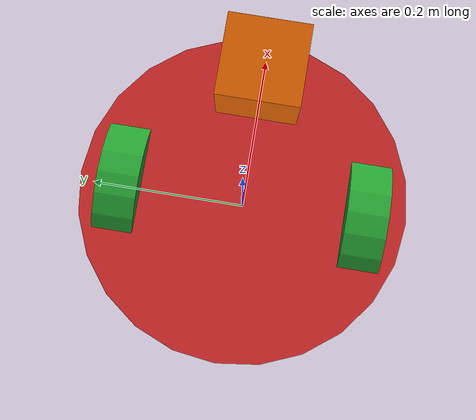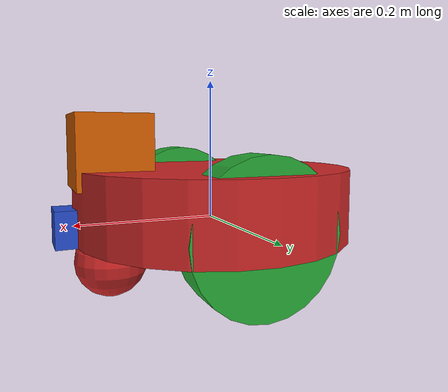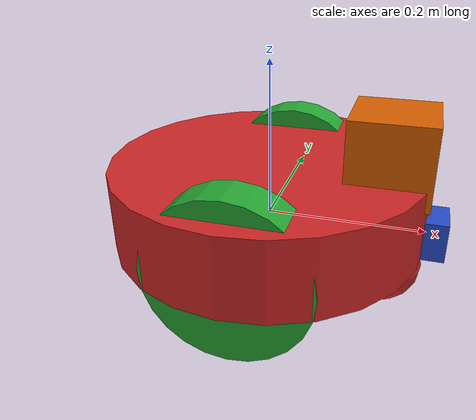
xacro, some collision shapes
<?xml version='1.0'?>
<robot name="my_robot" xmlns:xacro="http://www.ros.org/wiki/xacro">
  <xacro:include filename="$(find my_robot)/urdf/my_robot.gazebo" />

  <link name="robot_footprint"></link>
  <joint name="robot_footprint_joint" type="fixed">
    <origin xyz="0 0 0" rpy=" 0 0 0"/>
    <parent link="robot_footprint"/>
    <child link="chassis" />
  </joint>

  <link name='chassis'>
    <pose>0 0 0.1 0 0 0</pose>
    <inertial>
      <mass value="15.0"/>
      <origin xyz="0.0 0 0" rpy=" 0 0 0"/>
      <inertia
          ixx="0.1" ixy="0" ixz="0"
          iyy="0.1" iyz="0"
          izz="0.1"
      />
    </inertial>

    <collision name='collision'>
      <origin xyz="0 0 0.025" rpy=" 0 0 0"/>
      <geometry>
        <cylinder length="0.1" radius="0.2"/>
      </geometry>
    </collision>

    <visual name='chassis_visual'>
      <origin xyz="0 0 0.025" rpy=" 0 0 0"/>
      <geometry>
        <cylinder length="0.1" radius="0.2"/>
      </geometry>
    </visual>

    <collision name='back_caster_collision'>
      <origin xyz="-0.15 0 -0.05" rpy=" 0 0 0"/>
      <geometry>
        <sphere radius="0.0499"/>
      </geometry>
    </collision>

    <visual name='back_caster_visual'>
      <origin xyz="-0.15 0 -0.05" rpy=" 0 0 0"/>
      <geometry>
        <sphere radius="0.05"/>
      </geometry>
    </visual>

    <collision name='front_caster_collision'>
      <origin xyz="0.15 0 -0.05" rpy=" 0 0 0"/>
      <geometry>
        <sphere radius="0.0499"/>
      </geometry>
    </collision>

    <visual name='front_caster_visual'>
      <origin xyz="0.15 0 -0.05" rpy=" 0 0 0"/>
      <geometry>
        <sphere radius="0.05"/>
      </geometry>
    </visual>

  </link>

   <gazebo reference="chassis">
    <material>Gazebo/Red</material>
  </gazebo>

  <link name="left_wheel">
    <inertial>
      <mass value="5"/>
      <origin rpy="0 1.5707 1.5707" xyz="0 0 0"/>
      <inertia ixx="0.1" ixy="0" ixz="0" iyy="0.1" iyz="0" izz="0.1"/>
    </inertial>

    <collision name="left_wheel_collision">
      <origin rpy="0 1.5707 1.5707" xyz="0 0 0" />
      <geometry>
        <cylinder length="0.05" radius="0.1"/>
      </geometry>
    </collision>

    <visual name="left_wheel_visual">
      <origin rpy="0 1.5707 1.5707" xyz="0 0 0"/>
      <geometry>
        <cylinder length="0.05" radius="0.1"/>
      </geometry>
    </visual>
  </link>

  <!--   Joint for left wheel  -->
  <joint name="left_wheel_hinge" type="continuous">
    <origin rpy="0 0 0" xyz="0 0.15 0"/>
    <child link="left_wheel" />
    <parent link="chassis"/>
    <axis rpy="0 0 0" xyz="0 1 0"/>
    <limit effort="10000" velocity="1000"/>
    <joint_properties damping="1.0" friction="1.0" />
  </joint>

  <gazebo reference="left_wheel">
    <material>Gazebo/Green</material>
  </gazebo>

  <link name="right_wheel">
    <inertial>
      <mass value="5"/>
      <origin rpy="0 1.5707 1.5707" xyz="0 0 0"/>
      <inertia ixx="0.1" ixy="0" ixz="0" iyy="0.1" iyz="0" izz="0.1"/>
    </inertial>

    <collision name="right_wheel_collision">
      <origin rpy="0 1.5707 1.5707" xyz="0 0 0" />
      <geometry>
        <cylinder length="0.05" radius="0.1"/>
      </geometry>
    </collision>

    <visual name="right_wheel_visual">
      <origin rpy="0 1.5707 1.5707" xyz="0 0 0"/>
      <geometry>
        <cylinder length="0.05" radius="0.1"/>
      </geometry>
    </visual>
  </link>

  <!--   Joint for right wheel  -->
  <joint name="right_wheel_hinge" type="continuous">
    <origin rpy="0 0 0" xyz="0 -0.15 0"/>
    <child link="right_wheel" />
    <parent link="chassis"/>
    <axis rpy="0 0 0" xyz="0 1 0"/>
    <limit effort="10000" velocity="1000"/>
    <joint_properties damping="1.0" friction="1.0" />
  </joint>

<gazebo reference="right_wheel">
<material>Gazebo/Green</material>
</gazebo>

<link name='camera'>
    <pose>0 0 0 0 0 0</pose>

    <inertial>
      <mass value="0.1"/>
      <origin xyz="0.0 0 0" rpy=" 0 0 0"/>
      <inertia
          ixx="1e-6" ixy="0" ixz="0" iyy="1e-6" iyz="0" izz="1e-6"
      />
    </inertial>

    <collision name='camera_collision'>
      <origin xyz="0 0 0" rpy=" 0 0 0"/>
      <geometry>
        <box size="0.05 0.05 0.05"/>
      </geometry>
    </collision>

    <visual name='camera_visual'>
      <origin xyz="0 0 0" rpy=" 0 0 0"/>
      <geometry>
        <box size="0.05 0.05 0.05"/>
      </geometry>
    </visual>

</link>

  <joint name="camera_joint" type="fixed">
    <origin xyz="0.2 0 0" rpy="0 0 0" />
    <parent link="chassis"/>
    <child link="camera" />
    <axis xyz="0 1 0" rpy="0 0 0"/>
  </joint>

<gazebo reference="camera">
  <material>Gazebo/Blue</material>
</gazebo>

 <link name='hokuyo'>
    <pose>0 0 0 0 0 0</pose>

    <inertial>
      <mass value="1e-5"/>
      <origin xyz="0.0 0 0" rpy=" 0 0 0"/>
      <inertia
          ixx="1e-6" ixy="0" ixz="0" iyy="1e-6" iyz="0" izz="1e-6"
      />
    </inertial>

    <collision name='hokuyo_collision'>
      <origin xyz="0 0 0" rpy=" 0 0 0"/>
      <geometry>
        <box size="0.1 0.1 0.1"/>
      </geometry>
    </collision>

    <visual name='hokuyo_visual'>
      <origin xyz="0 0 0" rpy=" 0 0 0"/>
      <geometry>
        <mesh filename="package://my_robot/meshes/hokuyo.dae"/>
      </geometry>
    </visual>

</link>

  <joint name="hokuyo_joint" type="fixed">
  <origin xyz="0.15 0 0.1" rpy="0 0 0" />
  <parent link="chassis"/>
  <child link="hokuyo" />
  <axis xyz="0 1 0" rpy="0 0 0"/>
  </joint>

   <joint name="camera_optical_joint" type="fixed">
    <origin xyz="0 0 0" rpy="-1.5707 0 -1.5707"/>
    <parent link="camera"/>
    <child link="camera_link_optical"/>
  </joint>

  <link name="camera_link_optical">
  </link>

</robot>
